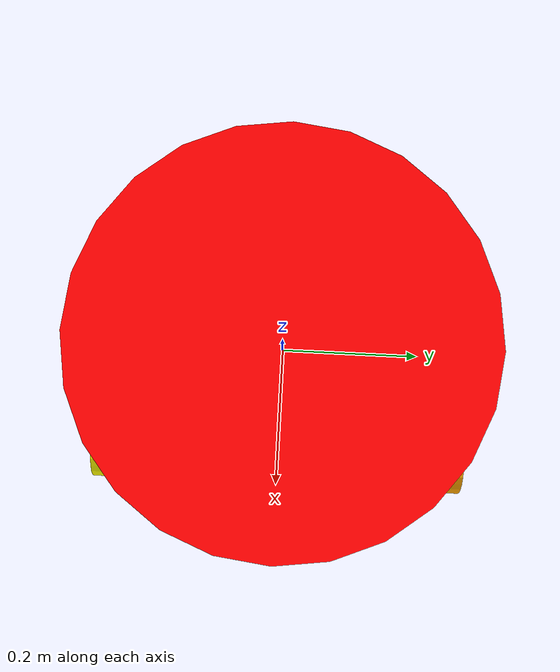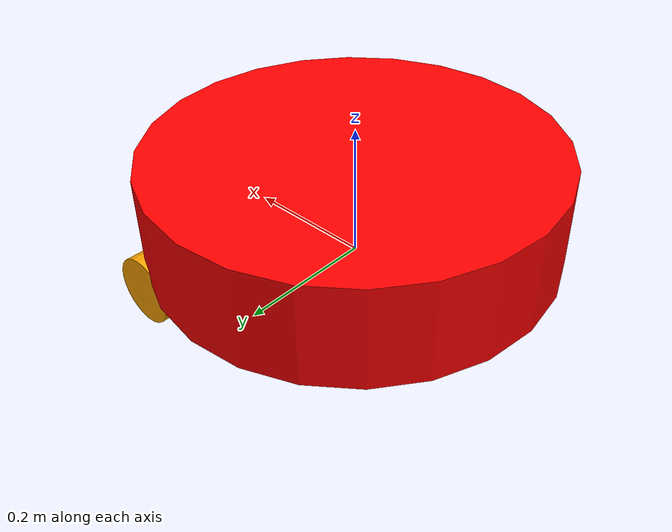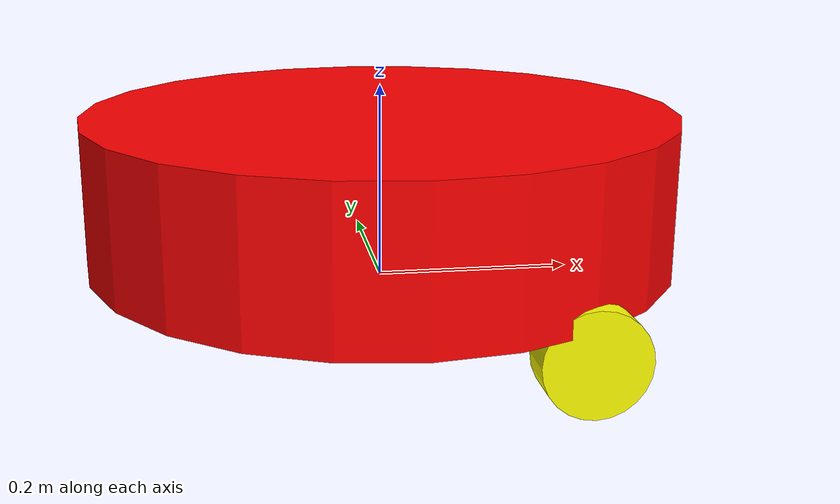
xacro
<?xml version="1.0"?>
<robot xmlns:xacro="http://www.ros.org/wiki/xacro">

    <!--robot tag calls for separate inertia file for different bodies-->
    <xacro:include filename="inertial_macros.xacro"/>

    <!--Declare color tags to give it to materials-->

    <material name="red">
        <color rgba="1.0 0.0 0.0 1"/>
    </material>
    <material name="green">
        <color rgba="0.0 1.0 0.0 1"/>
    </material>
    <material name="blue">
        <color rgba="0.0 0.0 1.0 1"/>
    </material>
    <material name="orange">
        <color rgba="1.0 0.65 0 1"/>
    </material>
    <material name="yellow">
        <color rgba="1.0 1.0 0.0 1"/>
    </material>
    <material name="magenta">
        <color rgba="1.0 0.0 1.0 1"/>
    </material>

    <!--BASE LINK, the main origin of robot-->
    <link name="base_link">
    </link>

    <!--CHASIS LINK, a cylindrical robot-->

    <joint name="round_body_joint" type="fixed">
        <parent link="base_link"/>
        <child link="round_body"/>
        <!--origin at center of base_link, with 5 cm ground clearance-->
        <origin xyz="0 0 0.05" rpy="0 0 0"/>
    </joint>

    <link name="round_body">
        <visual>
            <origin xyz="0 0 0.05" rpy="0 0 0"/>
            <geometry>
                <cylinder length="0.15" radius="0.3"/>
            </geometry>
            <material name="red"/>
        </visual>
        <collision>
            <origin xyz="0 0 0.05" rpy="0 0 0"/>
            <geometry>
                <cylinder length="0.15" radius="0.3"/>
            </geometry>
        </collision>
        <xacro:inertial_cylinder mass="0.3" length="0.15" radius="0.3">
            <origin xyz="0 0 0" rpy="0 0 0"/>
        </xacro:inertial_cylinder>
    </link>

    <gazebo reference="round_body">
        <material>Gazebo/Red</material>
    </gazebo>

    <!--LEFT WHEEL-->

     <joint name="left_wheel_joint" type="continuous">
        <parent link="base_link"/>
        <child link="left_wheel"/>
        <origin xyz="0.15 0.25 0" rpy="${-3.14/2} 0 0"/>
        <axis xyz="0 0 1"/>
    </joint>

    <link name="left_wheel">
        <visual>
            <geometry>
                <cylinder length="0.04" radius="0.05"/>
            </geometry>
            <material name="orange"/>
        </visual>
        <collision>
            <geometry>
                <cylinder length="0.04" radius="0.05"/>
            </geometry>
        </collision>
        <xacro:inertial_cylinder mass="0.1" length="0.05" radius="0.05">
            <origin xyz="0 0 0" rpy="0 0 0"/>
        </xacro:inertial_cylinder>
    </link>
    <gazebo reference="left_wheel">
        <material>Gazebo/Orange</material>
    </gazebo>

    <!--RIGHT WHEEL-->
    <joint name="right_wheel_joint" type="continuous">
        <parent link="base_link"/>
        <child link="right_wheel"/>
        <origin xyz="0.15 -0.25 0" rpy="${3.14/2} 0 0"/>
        <axis xyz="0 0 -1"/>
    </joint>

    <link name="right_wheel">
        <visual>
            <geometry>
                <cylinder length="0.04" radius="0.05"/>
            </geometry>
            <material name="yellow"/>
        </visual>
        <collision>
            <geometry>
                <cylinder length="0.04" radius="0.05"/>
            </geometry>
        </collision>
        <xacro:inertial_cylinder mass="0.1" length="0.05" radius="0.05">
            <origin xyz="0 0 0" rpy="0 0 0"/>
        </xacro:inertial_cylinder>
    </link>
    <gazebo reference="right_wheel">
        <material>Gazebo/Yellow</material>
    </gazebo>

    <!--CASTER wHEEL-->
    <joint name="caster_wheel_joint" type="fixed">
        <parent link="round_body"/>
        <child link="caster_wheel"/>
        <origin xyz="0.24 0 -0.05" rpy="0 0 0"/>
    </joint>

    <link name="caster_wheel">
        <visual>
            <geometry>
                <sphere radius="0.05"/>
            </geometry>
            <material name="blue"/>
        </visual>
        <collision>
            <geometry>
                <sphere radius="0.05"/>
            </geometry>
        </collision>
        <xacro:inertial_sphere mass="0.1" radius="0.05">
            <origin xyz="0 0 0" rpy="0 0 0"/>
        </xacro:inertial_sphere>
    </link>
    <gazebo reference="caster_wheel">
        <material>Gazebo/Blue</material>
        <!--this is to reduce friction on caster wheel, else it will drag(fixed)-->
        <mu1 value="0.001"/>
        <mu2 value="0.001"/>
    </gazebo>

</robot>
